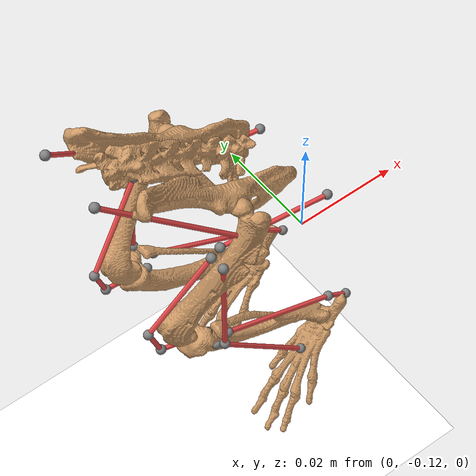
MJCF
<?xml version="1.0" encoding="utf-8"?>
<mujoco model="Rat Hindlimb Right">
  <compiler angle="radian">
  </compiler>
  <visual>
      <scale framelength='0.3' framewidth='0.1'/>
      <global offwidth="1280" offheight="920"/>
   </visual>
  <default>
    <joint limited="true" damping="0.0001" stiffness="0.0001"></joint>
    <geom rgba="0.8 0.6 .4 1"></geom>
    <site size="0.001"></site>
    <tendon width="0.0005" rgba=".95 .3 .3 1" limited="false"></tendon>
    <default class="muscle">
      <muscle ctrllimited="true" ctrlrange="0 1" ></muscle>
    </default>
  </default>
  <worldbody>
  <camera name='fixed' pos="-0.239 0.555 0.019" xyaxes="-0.998 0.056 -0.000 -0.004 -0.078 0.997"/>

    <geom name="floor" pos="0 0 -0.085" size="10 10 0.125" type="plane" material="MatPlane" rgba="1 1 1 1" condim="3"></geom>
    <body name="spine" pos="       0       -.1 6.12323e-17" quat=" -0.1830    0.1830    0.6830    0.6830">

      <joint name='x_slide' type='slide' axis='0.8660   -0.5000    0 ' limited='true' range='-1 1'/>
      <joint name='y_slide' type='slide' axis='0     0    1' limited='true' range='-1 1'/>
      <joint name='z_slide' type='slide' axis='0.5  0.866  0' limited='true' range='-0.0265 1'/>
      <joint name='y_hinge' type='hinge' axis='0     0    1' limited='true' range='-0.01 0.01'/>
      <joint name='z_hinge' type='hinge' axis='0.5  0.866  0' limited='true' range='-0.2 0.2'/>

      <light mode="trackcom" directional="false" pos="0 0 4.0" dir="0 0 -1"></light>
      <geom name="spine" type="mesh" mesh="spine"></geom>
      <inertial pos="       0        0        0" mass="0.011824000000000005"></inertial>
      <body name="L_pelvis" pos="   0.005   -0.003     -0.01" quat="0 0.0 1 0.0">
        <geom name="L_pelvis" type="mesh" mesh="L_pelvis"  mass="0.01"></geom>
        <site name="L_Hip_Ext_Pelvis" pos="0.024199251041167  -0.000933954385910  -0.000003638250253"></site>
        <site name="L_Hip_Flx_Pelvis" pos="-0.034278843371281   0.001936363298852  -0.002889053521072"></site>
        <body name="L_femur" pos="       0        0        0.00" quat="1 0 0 0">
          <geom name="L_femur" type="mesh" mesh="L_femur"  mass="0.014140999794006348"></geom>
          <site name="L_Hip_Ext_Femur" pos="0.000164061557790  -0.009744455046850   0.000155782949626"></site>
          <site name="L_Hip_Flx_Femur" pos="0.000361799254514  -0.004927975980343   0.002877630717600"></site>
          <site name="L_knee_ext_1" pos="-0.003014000000000  -0.010457988826816   0.001609000000000" />
          <site name="L_knee_ext_2" pos="-0.005078000000000  -0.031154706703911  -0.001560000000000" />
          <site name="L_knee_ext_3" pos="0.000452000000000  -0.035705572625698  -0.001315000000000" />
          <site name="L_knee_flx_1" pos="-0.001583000000000  -0.011246829608939   0.004022000000000" />
          <joint name="L_hip_flx" type="hinge" pos="0 0 0" axis="       0        0        1" limited="true" range="-1.072665  1.82173" ></joint>
          <body name="L_tibia" pos="       0.0435        -0.0330        0" quat="0.7071         0         0   0.7071">
            <geom name="L_tibia" type="mesh" mesh="L_tibia"  mass="0.0033380000591278076"></geom>
            <site name="L_knee_ext_4" pos=" 0.000219000000000   0.032908682709447  -0.000492000000000" />
            <site name="L_knee_flx_2" pos="0.001729000000000   0.033332653297683   0.004386000000000" />
            <site name="L_ankle_ext_1" pos="0.001634000000000   0.030064225490196   0.001724000000000" />
            <site name="L_ankle_ext_2" pos="0.004207000000000   0.001378975044563   0.0003674000000000" />
            <site name="L_ankle_flx_1" pos="-0.002965000000000   0.029150333333333   0.000077413000000" />
            <joint name="L_knee_flx" type="hinge" pos="0.001 0.040 0" axis="       0        0        -1" limited="true" range="-1.01799 1.249066" ref="0"></joint>
            <body name="L_foot" pos="       0        0        0" quat="0.9659         0         0   -0.2588">
              <geom name="L_foot" type="mesh" mesh="L_foot"  mass="0.0015709999799728394"></geom>
              <site name="L_ankle_flx_2" pos="-0.008813000000000  -0.002939000000000   0.000994000000000" />
              <site name="L_ankle_ext_3" pos="0.0054387000000000  -0.002167000000000  0.000173000000000" />
              <joint name="L_ankle_flx" type="hinge" pos="0 0 0" axis="       0        0        1" limited="true" range="-0.523599   1.0472" ref="0"></joint>
            </body>
          </body>
        </body>
      </body>

      <body name="R_pelvis" pos="   0.005   -0.003     0.01" quat="1.0 0.0 0.0 0.0">
        <geom name="R_pelvis" type="mesh" mesh="R_pelvis" mass="0.01" ></geom>
		    <site name="R_Hip_Ext_Pelvis" pos="-0.024199251041167  -0.000933954385910  -0.000003638250253"></site>
        <site name="R_Hip_Flx_Pelvis" pos="0.034278843371281   0.001936363298852  -0.002889053521072"></site>
        <body name="R_femur" pos="       0        0        0.00" quat="1 0 0 0">
          <geom name="R_femur" type="mesh" mesh="R_femur" mass="0.014140999794006348" ></geom>
		      <site name="R_Hip_Ext_Femur" pos="-0.000164061557790  -0.009744455046850   0.000155782949626"></site>
          <site name="R_Hip_Flx_Femur" pos="-0.000361799254514  -0.004927975980343   0.002877630717600"></site>
          <site name="R_knee_ext_1" pos="0.003014000000000  -0.010457988826816   0.001609000000000" />
          <site name="R_knee_ext_2" pos="0.005078000000000  -0.031154706703911  -0.001560000000000" />
          <site name="R_knee_ext_3" pos="-0.000452000000000  -0.035705572625698  -0.001315000000000" />
          <site name="R_knee_flx_1" pos="0.001583000000000  -0.011246829608939   0.004022000000000" />
          <joint name="R_hip_flx" type="hinge" pos="0 0 0" axis="       0        0        -1" limited="true" range="-1.072665  1.82173" ></joint>
          <body name="R_tibia" pos="       -0.0435        -0.0330        0" quat="0.7071         0         0   -0.7071">
            <geom name="R_tibia" type="mesh" mesh="R_tibia" mass="0.0033380000591278076"></geom>
            <site name="R_knee_ext_4" pos=" -0.000219000000000   0.032908682709447  -0.000492000000000" />
            <site name="R_knee_flx_2" pos="-0.001729000000000   0.033332653297683   0.004386000000000" />
            <site name="R_ankle_ext_1" pos="-0.001634000000000   0.030064225490196   0.001724000000000" />
            <site name="R_ankle_ext_2" pos="-0.004207000000000   0.001378975044563   0.0003674000000000" />
            <site name="R_ankle_flx_1" pos="0.002965000000000   0.029150333333333   0.000077413000000" />
            <joint name="R_knee_flx" type="hinge" pos="-0.001 0.040 0" axis="       0        0        1" limited="true" range="-1.01799 1.249066" ref="0"></joint>
            <body name="R_foot" pos="       0        0        0" quat="0.9659         0         0   0.2588">
              <geom name="R_foot" type="mesh" mesh="R_foot"  mass="0.0015709999799728394"></geom>
              <site name="R_ankle_flx_2" pos="0.008813000000000  -0.002939000000000   0.000994000000000" />
              <site name="R_ankle_ext_3" pos="-0.0054387000000000  -0.002167000000000  -0.000173000000000" />
              <joint name="R_ankle_flx" type="hinge" pos="0 0 0" axis="       0        0        -1" limited="true" range="-0.523599   1.0472" ref="0"></joint>
            </body>
          </body>
        </body>
      </body>
    </body>

  </worldbody>
  <asset>
    <mesh name="spine" file="Geometry/spine.stl" scale="       1        1        1"></mesh>
    <mesh name="R_pelvis" file="Geometry/pelvis.stl" scale="       1        1        1"></mesh>
    <mesh name="L_pelvis" file="Geometry/pelvis.stl" scale="       -1        1        1"></mesh>
    <mesh name="R_femur" file="Geometry/femur.stl" scale="       1        1        1"></mesh>
    <mesh name="L_femur" file="Geometry/femur.stl" scale="       -1        1        1"></mesh>
    <mesh name="R_tibia" file="Geometry/tibia.stl" scale="       1        1        1"></mesh>
    <mesh name="L_tibia" file="Geometry/tibia.stl" scale="       -1        1        1"></mesh>
    <mesh name="R_foot" file="Geometry/foot.stl" scale="       1        1        1"></mesh>
    <mesh name="L_foot" file="Geometry/foot.stl" scale="       -1        1        1"></mesh>
    <texture name="texplane" type="2d" builtin="checker" rgb1=".2 .3 .4" rgb2=".1 0.15 0.2" width="100" height="100"></texture>
    <material name="MatPlane" reflectance="0.0" texture="texplane" texrepeat="15 15" texuniform="true"></material>
    <texture type="skybox" builtin="gradient" rgb1="1 1 1" rgb2=".6 .8 1" width="256" height="256" />
  </asset>
  <tendon>
    <spatial name="R_hip_ext_tendon">
      <site site="R_Hip_Ext_Pelvis"></site>
      <site site="R_Hip_Ext_Femur"></site>
    </spatial>
    <spatial name="L_hip_ext_tendon">
      <site site="L_Hip_Ext_Pelvis"></site>
      <site site="L_Hip_Ext_Femur"></site>
    </spatial>

    <spatial name="R_hip_flx_tendon">
      <site site="R_Hip_Flx_Pelvis"></site>
      <site site="R_Hip_Flx_Femur"></site>
    </spatial>
    <spatial name="L_hip_flx_tendon">
      <site site="L_Hip_Flx_Pelvis"></site>
      <site site="L_Hip_Flx_Femur"></site>
    </spatial>

    <spatial name="R_knee_ext_tendon">
         <site site="R_knee_ext_1" />
         <site site="R_knee_ext_2" />
         <site site="R_knee_ext_3" />
         <site site="R_knee_ext_4" />
      </spatial>
      <spatial name="L_knee_ext_tendon">
         <site site="L_knee_ext_1" />
         <site site="L_knee_ext_2" />
         <site site="L_knee_ext_3" />
         <site site="L_knee_ext_4" />
      </spatial>

      <spatial name='R_knee_flx_tendon' >
        <site site='R_knee_flx_1' />
        <site site='R_knee_flx_2' />
      </spatial>
      <spatial name='L_knee_flx_tendon' >
        <site site='L_knee_flx_1' />
        <site site='L_knee_flx_2' />
      </spatial>

      <spatial name='R_ankle_flx_tendon' >
        <site site='R_ankle_flx_1' />
        <site site='R_ankle_flx_2' />
      </spatial>
      <spatial name='L_ankle_flx_tendon' >
        <site site='L_ankle_flx_1' />
        <site site='L_ankle_flx_2' />
      </spatial>

      <spatial name='R_ankle_ext_tendon' >
        <site site='R_ankle_ext_1' />
        <site site='R_ankle_ext_2' />
        <site site='R_ankle_ext_3' />
      </spatial>
      <spatial name='L_ankle_ext_tendon' >
        <site site='L_ankle_ext_1' />
        <site site='L_ankle_ext_2' />
        <site site='L_ankle_ext_3' />
      </spatial>
  </tendon>
  <actuator>
    <muscle name="R_hip_ext" tendon="R_hip_ext_tendon" class="muscle"  force='5'/>
    <muscle name="R_hip_flx" tendon="R_hip_flx_tendon" class="muscle" force='5'/>
    <muscle name="R_knee_ext" tendon="R_knee_ext_tendon" class="muscle" force='5'/>
    <muscle name="R_knee_flx" tendon="R_knee_flx_tendon" class="muscle" force='5'/>
    <muscle name="R_ankle_ext" tendon="R_ankle_ext_tendon" class="muscle" force='5'/>
    <muscle name="R_ankle_flx" tendon="R_ankle_flx_tendon" class="muscle" force='5'/>

    <muscle name="L_hip_ext" tendon="L_hip_ext_tendon" class="muscle" force='5'/>
    <muscle name="L_hip_flx" tendon="L_hip_flx_tendon" class="muscle" force='5'/>
    <muscle name="L_knee_ext" tendon="L_knee_ext_tendon" class="muscle" force='5'/>
    <muscle name="L_knee_flx" tendon="L_knee_flx_tendon" class="muscle" force='5'/>
    <muscle name="L_ankle_ext" tendon="L_ankle_ext_tendon" class="muscle" force='5'/>
    <muscle name="L_ankle_flx" tendon="L_ankle_flx_tendon" class="muscle" force='5'/>
  </actuator>
  <contact>
    <exclude body1="R_pelvis" body2="R_femur" />
    <exclude body1="L_pelvis" body2="L_femur" />
  </contact>
  <equality>
  </equality>
  <keyframe>
  </keyframe>
</mujoco>
